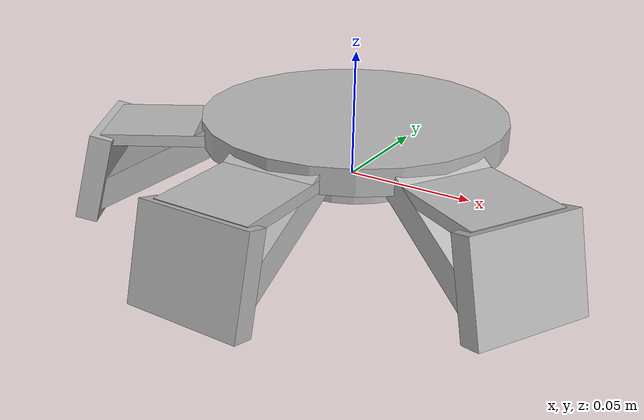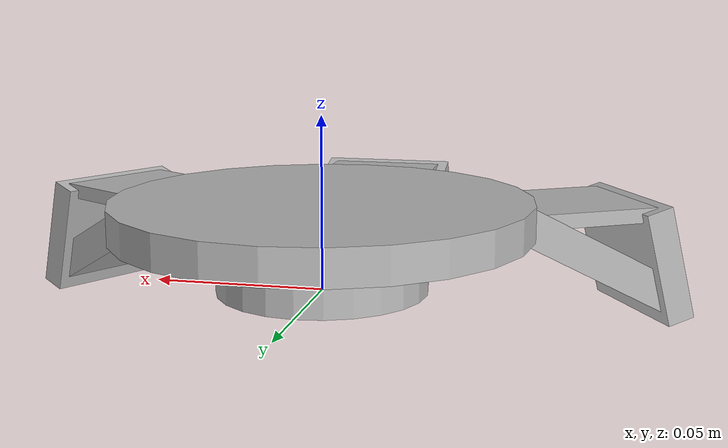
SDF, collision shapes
<?xml version="1.0" ?>
<sdf version="1.9">
  <model name="Tri Cam Mount">
    <link name="cam_mount_link">
      <visual name="cam_mount_visual">
        <geometry>
          <mesh>
            <uri>cam_mount_visual.glb</uri>
          </mesh>
        </geometry>
      </visual>
      <collision name="cam_mount_collider_cylinder">
        <pose>0.0 0.0 0.0215 0.0 -0.0 0.0</pose>
        <geometry>
          <cylinder>
            <radius>0.06</radius>
            <length>0.01</length>
          </cylinder>
        </geometry>
      </collision>
      <collision name="cam_mount_collider_cylinder.001">
        <pose>0.0 0.0 0.012638 0.0 -0.0 0.0</pose>
        <geometry>
          <cylinder>
            <radius>0.030383</radius>
            <length>0.025275</length>
          </cylinder>
        </geometry>
      </collision>
      <collision name="cam_mount003_collider_box">
        <pose>0.000252 -0.068974 0.0193 0.0 -0.0 -1.570796</pose>
        <geometry>
          <box>
            <size>0.055675 0.036898 0.0044</size>
          </box>
        </geometry>
      </collision>
      <collision name="cam_mount003_collider_box.001">
        <pose>0.000189 -0.100267 0.003926 0.0 1.308997 -1.570796</pose>
        <geometry>
          <box>
            <size>0.035256 0.04325 0.00858</size>
          </box>
        </geometry>
      </collision>
      <collision name="cam_mount003_collider_box.002">
        <pose>0.000252 -0.076575 0.007442 0.0 0.479966 -1.570796</pose>
        <geometry>
          <box>
            <size>0.059567 0.036898 0.010442</size>
          </box>
        </geometry>
      </collision>
      <collision name="cam_mount003_collider_box.003">
        <pose>0.059859 -0.034268 0.0193 0.0 -0.0 -0.523599</pose>
        <geometry>
          <box>
            <size>0.055675 0.036898 0.0044</size>
          </box>
        </geometry>
      </collision>
      <collision name="cam_mount003_collider_box.004">
        <pose>0.086928 -0.04997 0.003926 0.0 1.308997 -0.523599</pose>
        <geometry>
          <box>
            <size>0.035256 0.04325 0.00858</size>
          </box>
        </geometry>
      </collision>
      <collision name="cam_mount003_collider_box.005">
        <pose>0.06619 -0.037924 0.007593 0.0 0.479965 -0.523599</pose>
        <geometry>
          <box>
            <size>0.060221 0.036898 0.010442</size>
          </box>
        </geometry>
      </collision>
      <collision name="cam_mount003_collider_box.006">
        <pose>-0.059607 -0.034705 0.0193 0.0 -0.0 -2.617994</pose>
        <geometry>
          <box>
            <size>0.055675 0.036898 0.0044</size>
          </box>
        </geometry>
      </collision>
      <collision name="cam_mount003_collider_box.007">
        <pose>-0.08674 -0.050297 0.003926 0.0 1.308997 -2.617994</pose>
        <geometry>
          <box>
            <size>0.035256 0.04325 0.00858</size>
          </box>
        </geometry>
      </collision>
      <collision name="cam_mount003_collider_box.008">
        <pose>-0.066139 -0.038476 0.007473 0.0 0.479965 -2.617994</pose>
        <geometry>
          <box>
            <size>0.0597 0.036898 0.010442</size>
          </box>
        </geometry>
      </collision>
    </link>
  </model>
</sdf>
